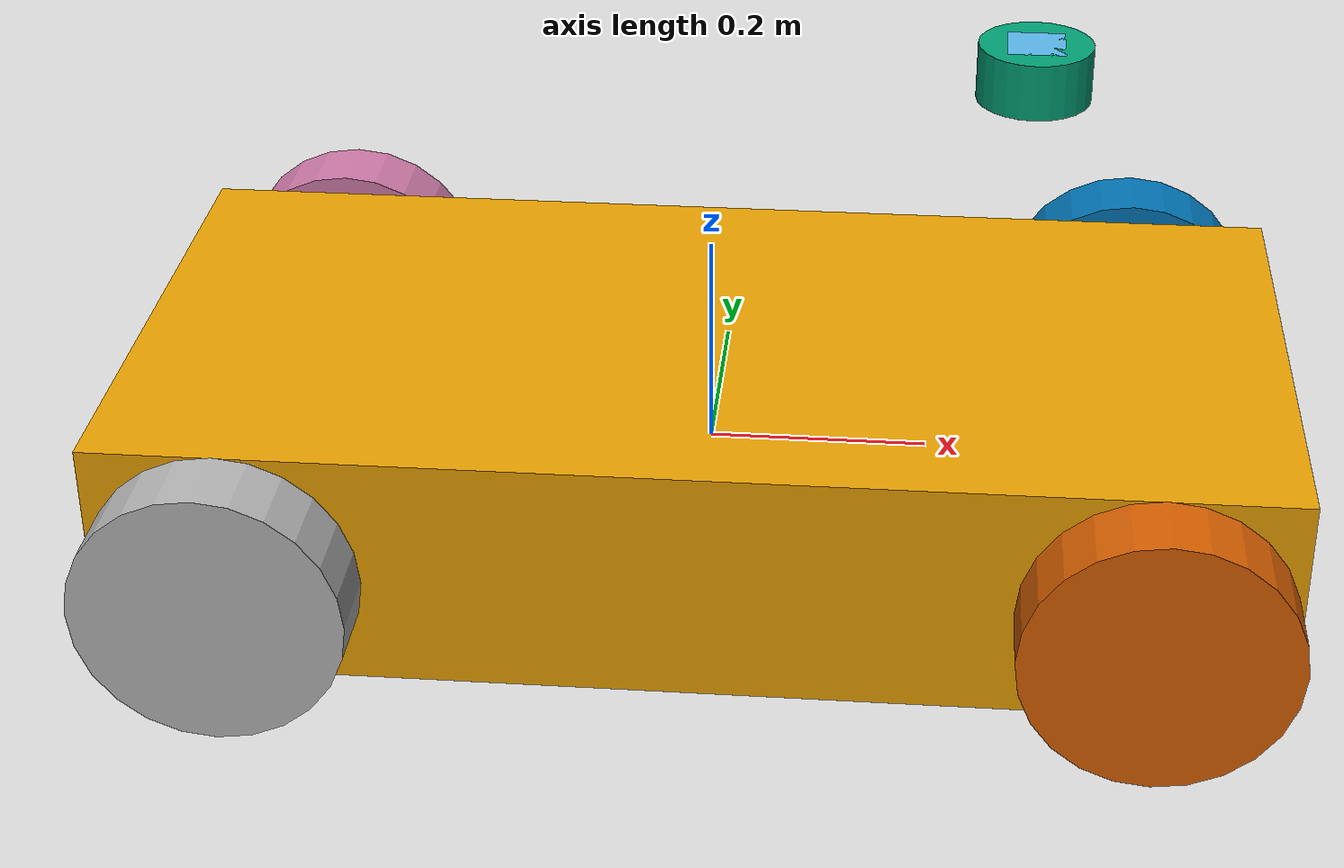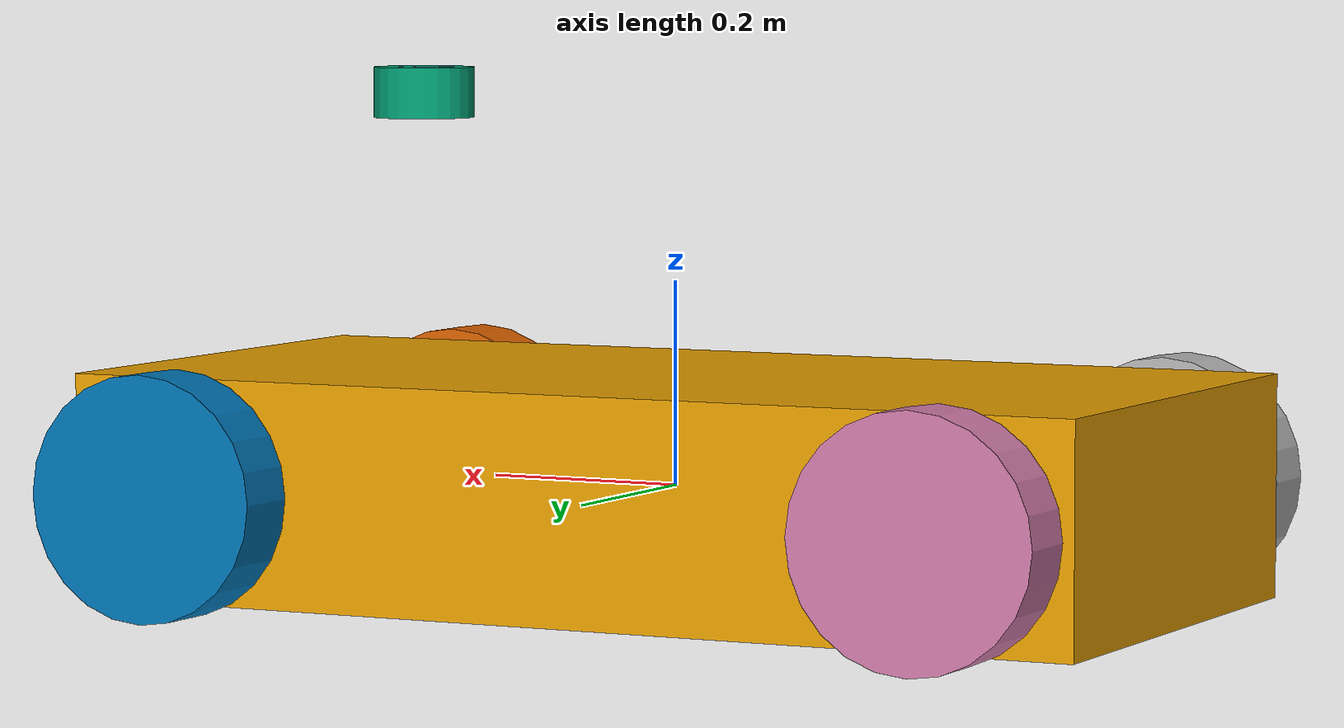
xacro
<?xml version="1.0"?>
<robot xmlns:xacro="http://www.ros.org/wiki/xacro" name="vehicle">
  <xacro:property name="wheelbase" value="0.8"/>
  <xacro:property name="track" value="0.62"/>

  <xacro:property name="body_length" value="1.05"/>
  <xacro:property name="body_width" value="0.52"/>
  <xacro:property name="body_height" value="0.22"/>
  <xacro:property name="body_mass" value="12.0"/>
  <xacro:property name="body_xx" value="0.55"/>
  <xacro:property name="body_xy" value="0"/>
  <xacro:property name="body_xz" value="0"/>
  <xacro:property name="body_yy" value="1.10"/>
  <xacro:property name="body_yz" value="0"/>
  <xacro:property name="body_zz" value="1.40"/>

  <xacro:property name="camera_length" value="0.05"/>
  <xacro:property name="camera_width" value="0.05"/>
  <xacro:property name="camera_height" value="0.05"/>
  <xacro:property name="camera_mass" value="0.033"/>
  <xacro:property name="camera_xx" value="0.000333"/>
  <xacro:property name="camera_xy" value="0"/>
  <xacro:property name="camera_xz" value="0"/>
  <xacro:property name="camera_yy" value="0.000333"/>
  <xacro:property name="camera_yz" value="0"/>
  <xacro:property name="camera_zz" value="0.000333"/>
  <xacro:property name="camera_x" value="0.28"/>
  <xacro:property name="camera_y" value="0"/>
  <xacro:property name="camera_z" value="0.38"/>
  <xacro:property name="camera_roll" value="0"/>
  <xacro:property name="camera_pitch" value="0"/>
  <xacro:property name="camera_yaw" value="0"/>

  <xacro:property name="lidar_radius" value="0.05"/>
  <xacro:property name="lidar_length" value="0.05"/>
  <xacro:property name="lidar_mass" value="0.033"/>
  <xacro:property name="lidar_xx" value="0.000333"/>
  <xacro:property name="lidar_xy" value="0"/>
  <xacro:property name="lidar_xz" value="0"/>
  <xacro:property name="lidar_yy" value="0.000333"/>
  <xacro:property name="lidar_yz" value="0"/>
  <xacro:property name="lidar_zz" value="0.000333"/>
  <xacro:property name="lidar_x" value="0.28"/>
  <xacro:property name="lidar_y" value="0"/>
  <xacro:property name="lidar_z" value="0.38"/>
  <xacro:property name="lidar_roll" value="0"/>
  <xacro:property name="lidar_pitch" value="0"/>
  <xacro:property name="lidar_yaw" value="0"/>

  <xacro:property name="imu_length" value="0.05"/>
  <xacro:property name="imu_width" value="0.05"/>
  <xacro:property name="imu_height" value="0.05"/>
  <xacro:property name="imu_mass" value="0.033"/>
  <xacro:property name="imu_xx" value="0.000333"/>
  <xacro:property name="imu_xy" value="0"/>
  <xacro:property name="imu_xz" value="0"/>
  <xacro:property name="imu_yy" value="0.000333"/>
  <xacro:property name="imu_yz" value="0"/>
  <xacro:property name="imu_zz" value="0.000333"/>
  <xacro:property name="imu_x" value="0.28"/>
  <xacro:property name="imu_y" value="0"/>
  <xacro:property name="imu_z" value="0.38"/>
  <xacro:property name="imu_roll" value="0"/>
  <xacro:property name="imu_pitch" value="0"/>
  <xacro:property name="imu_yaw" value="0"/>

  <xacro:property name="wheel_radius" value="0.12"/>
  <xacro:property name="wheel_width" value="0.07"/>
  <xacro:property name="wheel_mass" value="0.8"/>
  <xacro:property name="wheel_xx" value="0.006"/>
  <xacro:property name="wheel_xy" value="0"/>
  <xacro:property name="wheel_xz" value="0"/>
  <xacro:property name="wheel_yy" value="0.003"/>
  <xacro:property name="wheel_yz" value="0"/>
  <xacro:property name="wheel_zz" value="0.006"/>
  <xacro:property name="wheel_z" value="0"/>
  <xacro:property name="wheel_roll" value="1.57"/>
  <xacro:property name="wheel_pitch" value="0"/>
  <xacro:property name="wheel_yaw" value="0"/>

  <xacro:property name="front_wheel_x" value="0.4"/>
  <xacro:property name="rear_wheel_x" value="-0.4"/>
  <xacro:property name="left_wheel_y" value="0.31"/>
  <xacro:property name="right_wheel_y" value="-0.31"/>

  <xacro:macro name="wheel" params="prefix x y">
    <link name="${prefix}_wheel_link">
      <visual>
        <geometry>
          <cylinder radius="${wheel_radius}" length="${wheel_width}"/>
        </geometry>
      </visual>
      <collision>
        <geometry>
          <cylinder radius="${wheel_radius}" length="${wheel_width}"/>
        </geometry>
      </collision>
      <inertial>
        <mass value="${wheel_mass}"/>
        <inertia ixx="${wheel_xx}" ixy="${wheel_xy}" ixz="${wheel_xz}" iyy="${wheel_yy}" iyz="${wheel_yz}" izz="${wheel_zz}"/>
      </inertial>
    </link>
    <joint name="${prefix}_wheel_joint" type="continuous">
      <parent link="base_link"/>
      <child link="${prefix}_wheel_link"/>
      <origin xyz="${x} ${y} ${wheel_z}" rpy="${wheel_roll} ${wheel_pitch} ${wheel_yaw}"/>
      <axis xyz="0 0 1"/>
    </joint>
  </xacro:macro>

  <link name="base_link">
    <visual>
      <geometry>
        <box size="${body_length} ${body_width} ${body_height}"/>
      </geometry>
    </visual>
    <collision>
      <geometry>
        <box size="${body_length} ${body_width} ${body_height}"/>
      </geometry>
    </collision>
    <inertial>
      <mass value="${body_mass}"/>
      <inertia ixx="${body_xx}" ixy = "${body_xy}" ixz="${body_xz}" iyy="${body_yy}" iyz="${body_yz}" izz="${body_zz}"/>
    </inertial>
  </link>

  <link name = "camera_link">
    <visual>
      <geometry>
        <box size="${camera_length} ${camera_width} ${camera_height}"/>
      </geometry>
    </visual>
    <collision>
      <geometry>
        <box size="${camera_length} ${camera_width} ${camera_height}"/>
      </geometry>
    </collision>
    <inertial>
      <mass value="${camera_mass}"/>
      <inertia ixx="${camera_xx}" ixy = "${camera_xy}" ixz="${camera_xz}" iyy="${camera_yy}" iyz="${camera_yz}" izz="${camera_zz}"/>
    </inertial>
  </link>

  <link name="lidar_link">
     <visual>
      <geometry>
        <cylinder radius="${lidar_radius}" length="${lidar_length}"/>
      </geometry>
    </visual>
    <collision>
      <geometry>
        <cylinder radius="${lidar_radius}" length="${lidar_length}"/>
      </geometry>
    </collision>
    <inertial>
      <mass value="${lidar_mass}"/>
      <inertia ixx="${lidar_xx}" ixy = "${lidar_xy}" ixz="${lidar_xz}" iyy="${lidar_yy}" iyz="${lidar_yz}" izz="${lidar_zz}"/>
    </inertial>
  </link>

  <link name = "imu_link">
    <visual>
      <geometry>
        <box size="${imu_length} ${imu_width} ${imu_height}"/>
      </geometry>
    </visual>
    <collision>
      <geometry>
        <box size="${imu_length} ${imu_width} ${imu_height}"/>
      </geometry>
    </collision>
    <inertial>
      <mass value="${imu_mass}"/>
      <inertia ixx="${imu_xx}" ixy = "${imu_xy}" ixz="${imu_xz}" iyy="${imu_yy}" iyz="${imu_yz}" izz="${imu_zz}"/>
    </inertial>
  </link>

  <joint name="camera_joint" type="fixed">
    <parent link="base_link"/>
    <child link="camera_link"/>
    <origin xyz="${camera_x} ${camera_y} ${camera_z}" rpy="${camera_roll} ${camera_pitch} ${camera_yaw}"/>
  </joint>

  <joint name="lidar_joint" type="fixed">
    <parent link="base_link"/>
    <child link="lidar_link"/>
    <origin xyz="${lidar_x} ${lidar_y} ${lidar_z}" rpy="${lidar_roll} ${lidar_pitch} ${lidar_yaw}"/>
  </joint>

  <joint name="imu_joint" type="fixed">
    <parent link="base_link"/>
    <child link="imu_link"/>
    <origin xyz="${imu_x} ${imu_y} ${imu_z}" rpy="${imu_roll} ${imu_pitch} ${imu_yaw}"/>
  </joint>

  <xacro:wheel prefix="front_left" x="${front_wheel_x}" y="${left_wheel_y}"/>
  <xacro:wheel prefix="front_right" x="${front_wheel_x}" y="${right_wheel_y}"/>
  <xacro:wheel prefix="rear_left" x="${rear_wheel_x}" y="${left_wheel_y}"/>
  <xacro:wheel prefix="rear_right" x="${rear_wheel_x}" y="${right_wheel_y}"/>
</robot>
